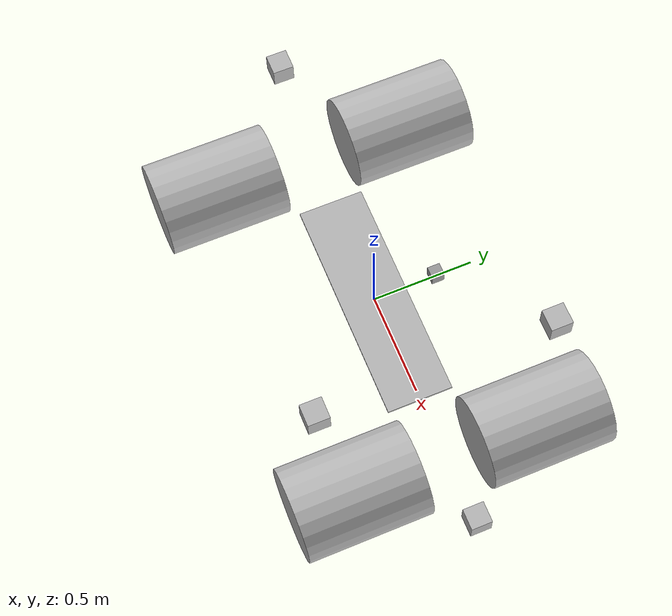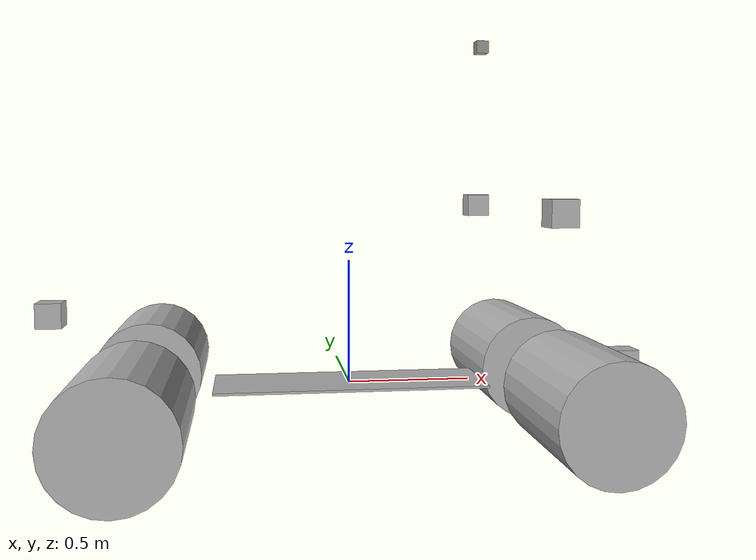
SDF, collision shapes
<?xml version='1.0'?>
<sdf version='1.7'>
  <model name='golfinho_cartographer'>

  <link name='base_footprint'/>

   <link name='imu_link'>
      <sensor name='imu_' type='imu'>
        <always_on>1</always_on>
            <update_rate>100</update_rate>
        <visualize>1</visualize>

        <plugin name='robot_imu' filename='libgazebo_ros_imu_sensor.so'>
          <initial_orientation_as_reference>0</initial_orientation_as_reference>
          <frame_name>imu_link</frame_name>
          <ros>

          <namespace>/imu</namespace>
          <remapping>~/out:=data</remapping>
          </ros>
        </plugin>
        <pose>0 0 0.01 0 0 0</pose>
      </sensor>
   </link>

      <joint name='imu_joint' type='fixed'>
      <parent>base_link</parent>
      <child>imu_link</child>
      <pose>0 0 0.05 0 0 0</pose>
      <physics>
        <ode>
          <limit>
            <cfm>0</cfm>
            <erp>0.2</erp>
          </limit>
          <suspension>
            <cfm>0</cfm>
            <erp>0.2</erp>
          </suspension>
        </ode>
      </physics>
    </joint>

   <joint name='base_joint' type='fixed'>
      <parent>base_footprint</parent>
      <child>base_link</child>
      <pose>0 0 0.05 0 0 0</pose>
      <physics>
        <ode>
          <limit>
            <cfm>0</cfm>
            <erp>0.2</erp>
          </limit>
          <suspension>
            <cfm>0</cfm>
            <erp>0.2</erp>
          </suspension>
        </ode>
      </physics>
    </joint>

    <link name='base_link'>
      <inertial>
        <pose>0 0 0 0 0 0</pose>
        <mass>160.004</mass>
        <inertia>
          <ixx>10</ixx>
          <ixy>0</ixy>
          <ixz>0</ixz>
          <iyy>10</iyy>
          <iyz>0</iyz>
          <izz>10</izz>
        </inertia>
      </inertial>
      <velocity_decay/>
      <velocity_decay/>
      <gravity>0</gravity>
      <gravity>0</gravity>
      <velocity_decay/>
      <sensor name='block_laser_sensor' type='ray'>
        <visualize>1</visualize>
        <ray>
          <scan>
            <horizontal>
              <samples>200</samples>
              <resolution>1</resolution>
              <min_angle>-0.9</min_angle>
              <max_angle>0.9</max_angle>
            </horizontal>
            <vertical>
              <samples>4</samples>
              <resolution>1</resolution>
              <min_angle>0</min_angle>
              <max_angle>0.05</max_angle>
            </vertical>
          </scan>
          <range>
            <min>0.1</min>
            <max>20</max>
            <resolution>0.01</resolution>
          </range>
        </ray>
        <update_rate>15</update_rate>
        <plugin name='gazebo_ros_block_laser_controller' filename='libgazebo_ros_ray_sensor.so'>
          <ros>
            <argument>~/out:=points2_1</argument>
          </ros>
          <output_type>sensor_msgs/PointCloud2</output_type>
          <topicName>points2_1</topicName>
          <frameName>laser_link_4_layer_front</frameName>
          <min_intensity>100.0</min_intensity>
        </plugin>
        <pose>1.18 0 0.11 0 -0 0</pose>
      </sensor>

      <sensor name='block_laser_sensor_rear' type='ray'>
        <visualize>1</visualize>
        <ray>
          <scan>
            <horizontal>
              <samples>200</samples>
              <resolution>1</resolution>
              <min_angle>-0.9</min_angle>
              <max_angle>0.9</max_angle>
            </horizontal>
            <vertical>
              <samples>4</samples>
              <resolution>1</resolution>
              <min_angle>0</min_angle>
              <max_angle>0.05</max_angle>
            </vertical>
          </scan>
          <range>
            <min>0.1</min>
            <max>20</max>
            <resolution>0.01</resolution>
          </range>
        </ray>
        <update_rate>15</update_rate>
        <plugin name='gazebo_ros_block_laser_controller' filename='libgazebo_ros_ray_sensor.so'>
          <ros>
            <argument>~/out:=points2_2</argument>
          </ros>
          <output_type>sensor_msgs/PointCloud2</output_type>
          <topicName>points2_2</topicName>
          <frameName>laser_link_4_layer_rear</frameName>
          <min_intensity>100.0</min_intensity>
        </plugin>
        <pose>-1.18 0 0.35 0 -0 3.14</pose>
      </sensor>

      <sensor name='one_block_laser_sensor' type='ray'>
        <visualize>1</visualize>
        <ray>
          <scan>
            <horizontal>
              <samples>200</samples>
              <resolution>1</resolution>
              <min_angle>-1.57075</min_angle>
              <max_angle>3.1415</max_angle>
            </horizontal>
            <vertical>
              <samples>1</samples>
              <min_angle>0</min_angle>
              <max_angle>0</max_angle>
            </vertical>
          </scan>
          <range>
            <min>0.1</min>
            <max>20</max>
            <resolution>0.01</resolution>
          </range>
        </ray>
        <update_rate>50</update_rate>
        <plugin name='gazebo_ros_block_laser_controller' filename='libgazebo_ros_ray_sensor.so'>
          <ros>
            <argument>~/out:=scan</argument>
          </ros>
          <output_type>sensor_msgs/LaserScan</output_type>
          <topicName>scan</topicName>
          <frameName>laser_link_left</frameName>
        </plugin>
        <pose>0.68 0.55 0.82 0 -0 0</pose>
      </sensor>

      <sensor name='two_block_laser_sensor' type='ray'>
        <visualize>1</visualize>
        <ray>
          <scan>
            <horizontal>
              <samples>200</samples>
              <resolution>1</resolution>
              <min_angle>-3.1415</min_angle>
              <max_angle>1.57075</max_angle>
            </horizontal>
            <vertical>
              <samples>1</samples>
              <min_angle>0</min_angle>
              <max_angle>0</max_angle>
            </vertical>
          </scan>
          <range>
            <min>0.1</min>
            <max>20</max>
            <resolution>0.01</resolution>
          </range>
        </ray>
        <update_rate>50</update_rate>
        <plugin name='gazebo_ros_block_laser_controller' filename='libgazebo_ros_ray_sensor.so'>
          <ros>
            <argument>~/out:=scan_2</argument>
          </ros>
          <output_type>sensor_msgs/LaserScan</output_type>
          <topicName>scan_2</topicName>
          <frameName>laser_link_right</frameName>
        </plugin>
        <pose>0.68 -0.55 0.82 0 -0 0</pose>
      </sensor>

      <self_collide>0</self_collide>
      <enable_wind>0</enable_wind>
      <kinematic>0</kinematic>
      <pose>0 0 0 0 -0 0</pose>

      <sensor name='bmb_gps' type='gps'>
        <always_on>1</always_on>
        <update_rate>10</update_rate>
        <gps>
          <position_sensing>
            <horizontal>
              <noise type='gaussian'>
                <mean>0</mean>
                <stddev>0.01</stddev>
              </noise>
            </horizontal>
            <vertical>
              <noise type='gaussian'>
                <mean>0</mean>
                <stddev>1</stddev>
              </noise>
            </vertical>
          </position_sensing>
        </gps>
        <plugin name='fix' filename='libgazebo_ros_gps_sensor.so'>
        <ros>
          <remapping>~/out:=gps/fix</remapping>
        </ros>
         <frame_name>gps_link</frame_name>
        </plugin>
      </sensor>

    <sensor type="camera" name="camera1">
      <update_rate>30.0</update_rate>
      <camera name="head">
        <horizontal_fov>1.3962634</horizontal_fov>
        <image>
          <width>800</width>
          <height>800</height>
          <format>R8G8B8</format>
        </image>
        <clip>
          <near>0.02</near>
          <far>300</far>
        </clip>
        <noise>
          <type>gaussian</type>
          <!-- Noise is sampled independently per pixel on each frame.
               That pixel's noise value is added to each of its color
               channels, which at that point lie in the range [0,1]. -->
          <mean>0.0</mean>
          <stddev>0.007</stddev>
        </noise>
      </camera>
      <plugin name="camera_controller" filename="libgazebo_ros_camera.so">
        <alwaysOn>true</alwaysOn>
        <updateRate>0.0</updateRate>
        <cameraName>golfinho/camera</cameraName>
        <imageTopicName>image_raw</imageTopicName>
        <cameraInfoTopicName>camera_info</cameraInfoTopicName>
        <frameName>camera_link</frameName>
        <hackBaseline>0.07</hackBaseline>
        <distortionK1>0.0</distortionK1>
        <distortionK2>0.0</distortionK2>
        <distortionK3>0.0</distortionK3>
        <distortionT1>0.0</distortionT1>
        <distortionT2>0.0</distortionT2>
      </plugin>
            <pose>0.549294 0.023722 1.36833 0 -0 0</pose>
    </sensor>

      <visual name='base_link_fixed_joint_lump__visual_0_visual'>
        <pose>0.1 0 -0.2 0 -0 0</pose>
        <geometry>
          <mesh>
            <scale>1.105 1 1</scale>
            <uri>file:////home/robsic/golfinho/install/golfinho_model/share/golfinho_model/meshes/golfinho/base.dae</uri>
          </mesh>
        </geometry>
        <material>
          <shader type='pixel'/>
          <emissive>0 0 0 1</emissive>
        </material>
        <transparency>0</transparency>
        <cast_shadows>1</cast_shadows>
      </visual>

      <collision name='base_link_fixed_joint_lump__collision_collision'>
        <laser_retro>0</laser_retro>
        <max_contacts>10</max_contacts>
        <pose>0 0 0 0 -0 0</pose>
        <geometry>
          <box>
            <size>1.1 0.32 0.01</size>
          </box>
        </geometry>
        <surface>
          <friction>
            <ode>
              <mu>1</mu>
              <mu2>1</mu2>
              <fdir1>0 0 0</fdir1>
              <slip1>0</slip1>
              <slip2>0</slip2>
            </ode>
            <torsional>
              <coefficient>1</coefficient>
              <patch_radius>0</patch_radius>
              <surface_radius>0</surface_radius>
              <use_patch_radius>1</use_patch_radius>
              <ode>
                <slip>0</slip>
              </ode>
            </torsional>
          </friction>
          <bounce>
            <restitution_coefficient>0</restitution_coefficient>
            <threshold>1e+06</threshold>
          </bounce>
          <contact>
            <collide_without_contact>0</collide_without_contact>
            <collide_without_contact_bitmask>1</collide_without_contact_bitmask>
            <collide_bitmask>1</collide_bitmask>
            <ode>
              <soft_cfm>0</soft_cfm>
              <soft_erp>0.2</soft_erp>
              <kp>1e+13</kp>
              <kd>1</kd>
              <max_vel>10</max_vel>
              <min_depth>0</min_depth>
            </ode>
            <bullet>
              <split_impulse>1</split_impulse>
              <split_impulse_penetration_threshold>-0.01</split_impulse_penetration_threshold>
              <soft_cfm>0</soft_cfm>
              <soft_erp>0.2</soft_erp>
              <kp>1e+13</kp>
              <kd>1</kd>
            </bullet>
          </contact>
        </surface>
      </collision>
    </link>

    <link name='back_left_wheel'>
      <pose>-0.835 0.485 -0 -1.5708 0 0</pose>
      <inertial>
        <pose>0 0 0 0 -0 0</pose>
        <mass>32.6</mass>
        <inertia>
          <ixx>0.412618</ixx>
          <ixy>0</ixy>
          <ixz>0</ixz>
          <iyy>0.412618</iyy>
          <iyz>0</iyz>
          <izz>0.825188</izz>
        </inertia>
      </inertial>
      <self_collide>0</self_collide>
      <enable_wind>0</enable_wind>
      <kinematic>0</kinematic>
      <visual name='back_left_wheel_visual_0_visual'>
        <pose>0 0 0 -1.5708 -0 0</pose>
        <geometry>
          <mesh>
            <scale>1 1 1</scale>
            <uri>file:////home/robsic/golfinho/install/golfinho_model/share/golfinho_model/meshes/golfinho/wheel.dae</uri>
          </mesh>
        </geometry>
        <material>
          <shader type='pixel'/>
          <emissive>0 0 0 1</emissive>
        </material>
        <transparency>0</transparency>
        <cast_shadows>1</cast_shadows>
      </visual>
      <collision name='back_left_wheel_collision_collision'>
        <laser_retro>0</laser_retro>
        <max_contacts>10</max_contacts>
        <pose>0 0 0 0 -0 0</pose>
        <geometry>
          <cylinder>
            <radius>0.225</radius>
            <length>0.6</length>
          </cylinder>
        </geometry>
        <surface>
          <friction>
            <ode>
              <mu>1</mu>
              <mu2>1</mu2>
              <fdir1>0 0 0</fdir1>
              <slip1>0</slip1>
              <slip2>0</slip2>
            </ode>
            <torsional>
              <coefficient>1</coefficient>
              <patch_radius>0</patch_radius>
              <surface_radius>0</surface_radius>
              <use_patch_radius>1</use_patch_radius>
              <ode>
                <slip>0</slip>
              </ode>
            </torsional>
          </friction>
          <bounce>
            <restitution_coefficient>0</restitution_coefficient>
            <threshold>1e+06</threshold>
          </bounce>
          <contact>
            <collide_without_contact>0</collide_without_contact>
            <collide_without_contact_bitmask>1</collide_without_contact_bitmask>
            <collide_bitmask>1</collide_bitmask>
            <ode>
              <soft_cfm>0</soft_cfm>
              <soft_erp>0.2</soft_erp>
              <kp>1e+13</kp>
              <kd>1</kd>
              <max_vel>10</max_vel>
              <min_depth>0</min_depth>
            </ode>
            <bullet>
              <split_impulse>1</split_impulse>
              <split_impulse_penetration_threshold>-0.01</split_impulse_penetration_threshold>
              <soft_cfm>0</soft_cfm>
              <soft_erp>0.2</soft_erp>
              <kp>1e+13</kp>
              <kd>1</kd>
            </bullet>
          </contact>
        </surface>
      </collision>
    </link>
    <link name='back_right_wheel'>
      <pose>-0.835 -0.485 -0 -1.5708 0 0</pose>
      <inertial>
        <pose>0 0 0 0 -0 0</pose>
        <mass>32.6</mass>
        <inertia>
          <ixx>0.412618</ixx>
          <ixy>0</ixy>
          <ixz>0</ixz>
          <iyy>0.412618</iyy>
          <iyz>0</iyz>
          <izz>0.825188</izz>
        </inertia>
      </inertial>
      <self_collide>0</self_collide>
      <enable_wind>0</enable_wind>
      <kinematic>0</kinematic>
      <visual name='back_right_wheel_fixed_joint_lump__back_left_wheel_visual_0_visual'>
        <pose>0 0 0 1.5708 -0 0</pose>
        <geometry>
          <mesh>
            <scale>1 1 1</scale>
            <uri>file:////home/robsic/golfinho/install/golfinho_model/share/golfinho_model/meshes/golfinho/wheel.dae</uri>
          </mesh>
        </geometry>
        <material>
          <shader type='pixel'/>
          <emissive>0 0 0 1</emissive>
        </material>
        <transparency>0</transparency>
        <cast_shadows>1</cast_shadows>
      </visual>
      <collision name='back_right_wheel_collision_collision'>
        <laser_retro>0</laser_retro>
        <max_contacts>10</max_contacts>
        <pose>0 0 0 0 -0 0</pose>
        <geometry>
          <cylinder>
            <radius>0.225</radius>
            <length>0.6</length>
          </cylinder>
        </geometry>
        <surface>
          <friction>
            <ode>
              <mu>1</mu>
              <mu2>1</mu2>
              <fdir1>0 0 0</fdir1>
              <slip1>0</slip1>
              <slip2>0</slip2>
            </ode>
            <torsional>
              <coefficient>1</coefficient>
              <patch_radius>0</patch_radius>
              <surface_radius>0</surface_radius>
              <use_patch_radius>1</use_patch_radius>
              <ode>
                <slip>0</slip>
              </ode>
            </torsional>
          </friction>
          <bounce>
            <restitution_coefficient>0</restitution_coefficient>
            <threshold>1e+06</threshold>
          </bounce>
          <contact>
            <collide_without_contact>0</collide_without_contact>
            <collide_without_contact_bitmask>1</collide_without_contact_bitmask>
            <collide_bitmask>1</collide_bitmask>
            <ode>
              <soft_cfm>0</soft_cfm>
              <soft_erp>0.2</soft_erp>
              <kp>1e+13</kp>
              <kd>1</kd>
              <max_vel>10</max_vel>
              <min_depth>0</min_depth>
            </ode>
            <bullet>
              <split_impulse>1</split_impulse>
              <split_impulse_penetration_threshold>-0.01</split_impulse_penetration_threshold>
              <soft_cfm>0</soft_cfm>
              <soft_erp>0.2</soft_erp>
              <kp>1e+13</kp>
              <kd>1</kd>
            </bullet>
          </contact>
        </surface>
      </collision>
    </link>
    <link name='front_left_mount'>
      <pose>0.835 0.45 -0 -1.5708 0 0</pose>
      <inertial>
        <pose>0 0 0 0 -0 0</pose>
        <mass>0.00064182</mass>
        <inertia>
          <ixx>2.11e-06</ixx>
          <ixy>0</ixy>
          <ixz>0</ixz>
          <iyy>2.11e-06</iyy>
          <iyz>0</iyz>
          <izz>2.7e-07</izz>
        </inertia>
      </inertial>
      <self_collide>0</self_collide>
      <enable_wind>0</enable_wind>
      <kinematic>0</kinematic>
      <visual name='front_left_mount_visual_visual'>
        <pose>0 0 0 1.5708 -0 0</pose>
        <geometry>
          <cylinder>
            <length>0.0001</length>
            <radius>0.0001</radius>
          </cylinder>
        </geometry>
        <material>
          <shader type='pixel'/>
          <emissive>0 0 0 1</emissive>
        </material>
        <transparency>0</transparency>
        <cast_shadows>1</cast_shadows>
      </visual>
      <collision name='front_left_mount_collision_collision'>
        <laser_retro>0</laser_retro>
        <max_contacts>10</max_contacts>
        <pose>0 0 0 0 -0 0</pose>
        <geometry>
          <cylinder>
            <radius>0.115</radius>
            <length>0.072407</length>
          </cylinder>
        </geometry>
        <surface>
          <friction>
            <ode>
              <mu>1</mu>
              <mu2>1</mu2>
              <fdir1>0 0 0</fdir1>
              <slip1>0</slip1>
              <slip2>0</slip2>
            </ode>
            <torsional>
              <coefficient>1</coefficient>
              <patch_radius>0</patch_radius>
              <surface_radius>0</surface_radius>
              <use_patch_radius>1</use_patch_radius>
              <ode>
                <slip>0</slip>
              </ode>
            </torsional>
          </friction>
          <bounce>
            <restitution_coefficient>0</restitution_coefficient>
            <threshold>1e+06</threshold>
          </bounce>
          <contact>
            <collide_without_contact>0</collide_without_contact>
            <collide_without_contact_bitmask>1</collide_without_contact_bitmask>
            <collide_bitmask>1</collide_bitmask>
            <ode>
              <soft_cfm>0</soft_cfm>
              <soft_erp>0.2</soft_erp>
              <kp>1e+13</kp>
              <kd>1</kd>
              <max_vel>10</max_vel>
              <min_depth>0</min_depth>
            </ode>
            <bullet>
              <split_impulse>1</split_impulse>
              <split_impulse_penetration_threshold>-0.01</split_impulse_penetration_threshold>
              <soft_cfm>0</soft_cfm>
              <soft_erp>0.2</soft_erp>
              <kp>1e+13</kp>
              <kd>1</kd>
            </bullet>
          </contact>
        </surface>
      </collision>
    </link>
    <link name='front_left_wheel'>
      <pose>0.835 0.45 -0 -1.5708 0 0</pose>
      <inertial>
        <pose>0 0 0 0 -0 0</pose>
        <mass>32.6</mass>
        <inertia>
          <ixx>0.412618</ixx>
          <ixy>0</ixy>
          <ixz>0</ixz>
          <iyy>0.412618</iyy>
          <iyz>0</iyz>
          <izz>0.825188</izz>
        </inertia>
      </inertial>
      <self_collide>0</self_collide>
      <enable_wind>0</enable_wind>
      <kinematic>0</kinematic>
      <visual name='front_left_wheel_visual_0_visual'>
        <pose>0 0 0 -1.5708 0 0</pose>
        <geometry>
          <mesh>
            <scale>1 1 1</scale>
            <uri>file:////home/robsic/golfinho/install/golfinho_model/share/golfinho_model/meshes/golfinho/wheel.dae</uri>
          </mesh>
        </geometry>
        <material>
          <shader type='pixel'/>
          <emissive>0 0 0 1</emissive>
        </material>
        <transparency>0</transparency>
        <cast_shadows>1</cast_shadows>
      </visual>
      <collision name='front_left_wheel_collision_collision'>
        <laser_retro>0</laser_retro>
        <max_contacts>10</max_contacts>
        <pose>0 0 0 0 -0 0</pose>
        <geometry>
          <cylinder>
            <radius>0.225</radius>
            <length>0.6</length>
          </cylinder>
        </geometry>
        <surface>
          <friction>
            <ode>
              <mu>1</mu>
              <mu2>1</mu2>
              <fdir1>0 0 0</fdir1>
              <slip1>0</slip1>
              <slip2>0</slip2>
            </ode>
            <torsional>
              <coefficient>1</coefficient>
              <patch_radius>0</patch_radius>
              <surface_radius>0</surface_radius>
              <use_patch_radius>1</use_patch_radius>
              <ode>
                <slip>0</slip>
              </ode>
            </torsional>
          </friction>
          <bounce>
            <restitution_coefficient>0</restitution_coefficient>
            <threshold>1e+06</threshold>
          </bounce>
          <contact>
            <collide_without_contact>0</collide_without_contact>
            <collide_without_contact_bitmask>1</collide_without_contact_bitmask>
            <collide_bitmask>1</collide_bitmask>
            <ode>
              <soft_cfm>0</soft_cfm>
              <soft_erp>0.2</soft_erp>
              <kp>1e+13</kp>
              <kd>1</kd>
              <max_vel>10</max_vel>
              <min_depth>0</min_depth>
            </ode>
            <bullet>
              <split_impulse>1</split_impulse>
              <split_impulse_penetration_threshold>-0.01</split_impulse_penetration_threshold>
              <soft_cfm>0</soft_cfm>
              <soft_erp>0.2</soft_erp>
              <kp>1e+13</kp>
              <kd>1</kd>
            </bullet>
          </contact>
        </surface>
      </collision>
    </link>
    <link name='front_right_mount'>
      <pose>0.835 -0.45 -0 -1.5708 0 0</pose>
      <inertial>
        <pose>0 0 0 0 -0 0</pose>
        <mass>0.00064182</mass>
        <inertia>
          <ixx>2.11e-06</ixx>
          <ixy>0</ixy>
          <ixz>0</ixz>
          <iyy>2.11e-06</iyy>
          <iyz>0</iyz>
          <izz>2.7e-07</izz>
        </inertia>
      </inertial>
      <self_collide>0</self_collide>
      <enable_wind>0</enable_wind>
      <kinematic>0</kinematic>
      <visual name='front_right_mount_visual_visual'>
        <pose>0 0 0 1.5708 -0 0</pose>
        <geometry>
          <cylinder>
            <length>0.0001</length>
            <radius>0.0001</radius>
          </cylinder>
        </geometry>
        <material>
          <shader type='pixel'/>
          <emissive>0 0 0 1</emissive>
        </material>
        <transparency>0</transparency>
        <cast_shadows>1</cast_shadows>
      </visual>
      <collision name='front_right_mount_collision_collision'>
        <laser_retro>0</laser_retro>
        <max_contacts>10</max_contacts>
        <pose>0 0 0 0 -0 0</pose>
        <geometry>
          <cylinder>
            <radius>0.115</radius>
            <length>0.072407</length>
          </cylinder>
        </geometry>
        <surface>
          <friction>
            <ode>
              <mu>1</mu>
              <mu2>1</mu2>
              <fdir1>0 0 0</fdir1>
              <slip1>0</slip1>
              <slip2>0</slip2>
            </ode>
            <torsional>
              <coefficient>1</coefficient>
              <patch_radius>0</patch_radius>
              <surface_radius>0</surface_radius>
              <use_patch_radius>1</use_patch_radius>
              <ode>
                <slip>0</slip>
              </ode>
            </torsional>
          </friction>
          <bounce>
            <restitution_coefficient>0</restitution_coefficient>
            <threshold>1e+06</threshold>
          </bounce>
          <contact>
            <collide_without_contact>0</collide_without_contact>
            <collide_without_contact_bitmask>1</collide_without_contact_bitmask>
            <collide_bitmask>1</collide_bitmask>
            <ode>
              <soft_cfm>0</soft_cfm>
              <soft_erp>0.2</soft_erp>
              <kp>1e+13</kp>
              <kd>1</kd>
              <max_vel>10</max_vel>
              <min_depth>0</min_depth>
            </ode>
            <bullet>
              <split_impulse>1</split_impulse>
              <split_impulse_penetration_threshold>-0.01</split_impulse_penetration_threshold>
              <soft_cfm>0</soft_cfm>
              <soft_erp>0.2</soft_erp>
              <kp>1e+13</kp>
              <kd>1</kd>
            </bullet>
          </contact>
        </surface>
      </collision>
    </link>
    <link name='front_right_wheel'>
      <pose>0.835 -0.45 -0 -1.5708 0 0</pose>
      <inertial>
        <pose>0 0 0 0 -0 0</pose>
        <mass>32.6</mass>
        <inertia>
          <ixx>0.412618</ixx>
          <ixy>0</ixy>
          <ixz>0</ixz>
          <iyy>0.412618</iyy>
          <iyz>0</iyz>
          <izz>0.825188</izz>
        </inertia>
      </inertial>
      <self_collide>0</self_collide>
      <enable_wind>0</enable_wind>
      <kinematic>0</kinematic>
      <visual name='front_right_wheel_visual_0_visual'>
        <pose>0 0 0 1.5708 -0 0</pose>
        <geometry>
          <mesh>
            <scale>1 1 1</scale>
            <uri>file:////home/robsic/golfinho/install/golfinho_model/share/golfinho_model/meshes/golfinho/wheel.dae</uri>
          </mesh>
        </geometry>
        <material>
          <shader type='pixel'/>
          <emissive>0 0 0 1</emissive>
        </material>
        <transparency>0</transparency>
        <cast_shadows>1</cast_shadows>
      </visual>
      <collision name='front_right_wheel_collision_collision'>
        <laser_retro>0</laser_retro>
        <max_contacts>10</max_contacts>
        <pose>0 0 0 0 -0 0</pose>
        <geometry>
          <cylinder>
            <radius>0.225</radius>
            <length>0.6</length>
          </cylinder>
        </geometry>
        <surface>
          <friction>
            <ode>
              <mu>1</mu>
              <mu2>1</mu2>
              <fdir1>0 0 0</fdir1>
              <slip1>0</slip1>
              <slip2>0</slip2>
            </ode>
            <torsional>
              <coefficient>1</coefficient>
              <patch_radius>0</patch_radius>
              <surface_radius>0</surface_radius>
              <use_patch_radius>1</use_patch_radius>
              <ode>
                <slip>0</slip>
              </ode>
            </torsional>
          </friction>
          <bounce>
            <restitution_coefficient>0</restitution_coefficient>
            <threshold>1e+06</threshold>
          </bounce>
          <contact>
            <collide_without_contact>0</collide_without_contact>
            <collide_without_contact_bitmask>1</collide_without_contact_bitmask>
            <collide_bitmask>1</collide_bitmask>
            <ode>
              <soft_cfm>0</soft_cfm>
              <soft_erp>0.2</soft_erp>
              <kp>1e+13</kp>
              <kd>1</kd>
              <max_vel>10</max_vel>
              <min_depth>0</min_depth>
            </ode>
            <bullet>
              <split_impulse>1</split_impulse>
              <split_impulse_penetration_threshold>-0.01</split_impulse_penetration_threshold>
              <soft_cfm>0</soft_cfm>
              <soft_erp>0.2</soft_erp>
              <kp>1e+13</kp>
              <kd>1</kd>
            </bullet>
          </contact>
        </surface>
      </collision>
    </link>
    <link name='link_0'>
      <inertial>
        <mass>1</mass>
        <inertia>
          <ixx>0.166667</ixx>
          <ixy>0</ixy>
          <ixz>0</ixz>
          <iyy>0.166667</iyy>
          <iyz>0</iyz>
          <izz>0.166667</izz>
        </inertia>
        <pose>0 0 0 0 -0 0</pose>
      </inertial>
      <pose>1.18 0 0.06 0 -0 0</pose>
      <gravity>0</gravity>
      <self_collide>0</self_collide>
      <kinematic>0</kinematic>
      <enable_wind>0</enable_wind>
      <visual name='visual'>
        <pose>0 0 0 0 -0 0</pose>
        <geometry>
          <mesh>
            <scale>0.05 0.05 0.05</scale>
            <uri>file:////home/robsic/golfinho/install/golfinho_model/share/golfinho_model/meshes/sick_4camadas.dae</uri>
          </mesh>
        </geometry>
        <material>
          <shader type='pixel'/>
          <emissive>0 0 0 1</emissive>
        </material>
        <transparency>0</transparency>
        <cast_shadows>1</cast_shadows>
      </visual>
      <collision name='collision'>
        <laser_retro>0</laser_retro>
        <max_contacts>10</max_contacts>
        <pose>0 0 0 0 -0 0</pose>
        <geometry>
          <box>
            <size>0.1 0.1 0.1</size>
          </box>
        </geometry>
        <surface>
          <friction>
            <ode>
              <mu>1</mu>
              <mu2>1</mu2>
              <fdir1>0 0 0</fdir1>
              <slip1>0</slip1>
              <slip2>0</slip2>
            </ode>
            <torsional>
              <coefficient>1</coefficient>
              <patch_radius>0</patch_radius>
              <surface_radius>0</surface_radius>
              <use_patch_radius>1</use_patch_radius>
              <ode>
                <slip>0</slip>
              </ode>
            </torsional>
          </friction>
          <bounce>
            <restitution_coefficient>0</restitution_coefficient>
            <threshold>1e+06</threshold>
          </bounce>
          <contact>
            <collide_without_contact>0</collide_without_contact>
            <collide_without_contact_bitmask>1</collide_without_contact_bitmask>
            <collide_bitmask>1</collide_bitmask>
            <ode>
              <soft_cfm>0</soft_cfm>
              <soft_erp>0.2</soft_erp>
              <kp>1e+13</kp>
              <kd>1</kd>
              <max_vel>0.01</max_vel>
              <min_depth>0</min_depth>
            </ode>
            <bullet>
              <split_impulse>1</split_impulse>
              <split_impulse_penetration_threshold>-0.01</split_impulse_penetration_threshold>
              <soft_cfm>0</soft_cfm>
              <soft_erp>0.2</soft_erp>
              <kp>1e+13</kp>
              <kd>1</kd>
            </bullet>
          </contact>
        </surface>
      </collision>
    </link>
    <link name='link_0_0'>
      <inertial>
        <mass>1</mass>
        <inertia>
          <ixx>0.166667</ixx>
          <ixy>0</ixy>
          <ixz>0</ixz>
          <iyy>0.166667</iyy>
          <iyz>0</iyz>
          <izz>0.166667</izz>
        </inertia>
        <pose>0.68 0.55 0.71 0 -0 0</pose>
      </inertial>
      <pose>0.68 0.55 0.71 0 -0 0</pose>
      <gravity>0</gravity>
      <self_collide>0</self_collide>
      <kinematic>0</kinematic>
      <enable_wind>0</enable_wind>
      <visual name='visual'>
        <pose>0 0 0 0 -0 0.7854</pose>
        <geometry>
          <mesh>
            <scale>0.0005 0.0005 0.0005</scale>
            <uri>file:////home/robsic/golfinho/install/golfinho_model/share/golfinho_model/meshes/sick_270.dae</uri>
          </mesh>
        </geometry>
        <material>
          <shader type='pixel'/>
          <emissive>0 0 0 1</emissive>
        </material>
        <transparency>0</transparency>
        <cast_shadows>1</cast_shadows>
      </visual>
      <collision name='collision'>
        <laser_retro>0</laser_retro>
        <max_contacts>10</max_contacts>
        <pose>0 0 0 0 -0 0</pose>
        <geometry>
          <box>
            <size>0.1 0.1 0.1</size>
          </box>
        </geometry>
        <surface>
          <friction>
            <ode>
              <mu>1</mu>
              <mu2>1</mu2>
              <fdir1>0 0 0</fdir1>
              <slip1>0</slip1>
              <slip2>0</slip2>
            </ode>
            <torsional>
              <coefficient>1</coefficient>
              <patch_radius>0</patch_radius>
              <surface_radius>0</surface_radius>
              <use_patch_radius>1</use_patch_radius>
              <ode>
                <slip>0</slip>
              </ode>
            </torsional>
          </friction>
          <bounce>
            <restitution_coefficient>0</restitution_coefficient>
            <threshold>1e+06</threshold>
          </bounce>
          <contact>
            <collide_without_contact>0</collide_without_contact>
            <collide_without_contact_bitmask>1</collide_without_contact_bitmask>
            <collide_bitmask>1</collide_bitmask>
            <ode>
              <soft_cfm>0</soft_cfm>
              <soft_erp>0.2</soft_erp>
              <kp>1e+13</kp>
              <kd>1</kd>
              <max_vel>0.01</max_vel>
              <min_depth>0</min_depth>
            </ode>
            <bullet>
              <split_impulse>1</split_impulse>
              <split_impulse_penetration_threshold>-0.01</split_impulse_penetration_threshold>
              <soft_cfm>0</soft_cfm>
              <soft_erp>0.2</soft_erp>
              <kp>1e+13</kp>
              <kd>1</kd>
            </bullet>
          </contact>
        </surface>
      </collision>
    </link>
    <link name='link_0_0_clone'>
      <inertial>
        <mass>1</mass>
        <inertia>
          <ixx>0.166667</ixx>
          <ixy>0</ixy>
          <ixz>0</ixz>
          <iyy>0.166667</iyy>
          <iyz>0</iyz>
          <izz>0.166667</izz>
        </inertia>
        <pose>0.68 -0.55 0.71 0 -0 0</pose>
      </inertial>
      <pose>0.68 -0.55 0.71 0 -0 0</pose>
      <gravity>0</gravity>
      <self_collide>0</self_collide>
      <kinematic>0</kinematic>
      <enable_wind>0</enable_wind>
      <visual name='visual_0'>
        <pose>0 0 0 0 0 -0.7854</pose>
        <geometry>
          <mesh>
            <scale>0.0005 0.0005 0.0005</scale>
            <uri>/home/robsic/golfinho/install/golfinho_model/share/golfinho_model/meshes/sick_270.dae</uri>
          </mesh>
        </geometry>
        <material>
          <shader type='pixel'/>
          <emissive>0 0 0 1</emissive>
        </material>
        <transparency>0</transparency>
        <cast_shadows>1</cast_shadows>
      </visual>
      <collision name='collision'>
        <laser_retro>0</laser_retro>
        <max_contacts>10</max_contacts>
        <pose>0 0 0 0 -0 0</pose>
        <geometry>
          <box>
            <size>0.1 0.1 0.1</size>
          </box>
        </geometry>
        <surface>
          <friction>
            <ode>
              <mu>1</mu>
              <mu2>1</mu2>
              <fdir1>0 0 0</fdir1>
              <slip1>0</slip1>
              <slip2>0</slip2>
            </ode>
            <torsional>
              <coefficient>1</coefficient>
              <patch_radius>0</patch_radius>
              <surface_radius>0</surface_radius>
              <use_patch_radius>1</use_patch_radius>
              <ode>
                <slip>0</slip>
              </ode>
            </torsional>
          </friction>
          <bounce>
            <restitution_coefficient>0</restitution_coefficient>
            <threshold>1e+06</threshold>
          </bounce>
          <contact>
            <collide_without_contact>0</collide_without_contact>
            <collide_without_contact_bitmask>1</collide_without_contact_bitmask>
            <collide_bitmask>1</collide_bitmask>
            <ode>
              <soft_cfm>0</soft_cfm>
              <soft_erp>0.2</soft_erp>
              <kp>1e+13</kp>
              <kd>1</kd>
              <max_vel>0.01</max_vel>
              <min_depth>0</min_depth>
            </ode>
            <bullet>
              <split_impulse>1</split_impulse>
              <split_impulse_penetration_threshold>-0.01</split_impulse_penetration_threshold>
              <soft_cfm>0</soft_cfm>
              <soft_erp>0.2</soft_erp>
              <kp>1e+13</kp>
              <kd>1</kd>
            </bullet>
          </contact>
        </surface>
      </collision>
    </link>
    <link name='link_0_1'>
      <inertial>
        <mass>1</mass>
        <inertia>
          <ixx>0.166667</ixx>
          <ixy>0</ixy>
          <ixz>0</ixz>
          <iyy>0.166667</iyy>
          <iyz>0</iyz>
          <izz>0.166667</izz>
        </inertia>
        <pose>0 0 0 0 -0 0</pose>
      </inertial>
      <pose>0.549294 0.023722 1.36833 0 -0 0</pose>
      <gravity>0</gravity>
      <self_collide>0</self_collide>
      <kinematic>0</kinematic>
      <enable_wind>0</enable_wind>
      <visual name='visual'>
        <pose>0 0 0 0 -0 0</pose>
        <geometry>
          <box>
            <size>0.05 0.05 0.05</size>
          </box>
        </geometry>
        <material>
          <lighting>1</lighting>
          <script>
            <uri>file://media/materials/scripts/gazebo.material</uri>
            <name>Gazebo/Grey</name>
          </script>
          <shader type='pixel'>
            <normal_map>__default__</normal_map>
          </shader>
          <ambient>0.3 0.3 0.3 1</ambient>
          <diffuse>0.7 0.7 0.7 1</diffuse>
          <specular>0.01 0.01 0.01 1</specular>
          <emissive>0 0 0 1</emissive>
        </material>
        <transparency>0</transparency>
        <cast_shadows>1</cast_shadows>
      </visual>
      <collision name='collision'>
        <laser_retro>0</laser_retro>
        <max_contacts>10</max_contacts>
        <pose>0 0 0 0 -0 0</pose>
        <geometry>
          <box>
            <size>0.05 0.05 0.05</size>
          </box>
        </geometry>
        <surface>
          <friction>
            <ode>
              <mu>1</mu>
              <mu2>1</mu2>
              <fdir1>0 0 0</fdir1>
              <slip1>0</slip1>
              <slip2>0</slip2>
            </ode>
            <torsional>
              <coefficient>1</coefficient>
              <patch_radius>0</patch_radius>
              <surface_radius>0</surface_radius>
              <use_patch_radius>1</use_patch_radius>
              <ode>
                <slip>0</slip>
              </ode>
            </torsional>
          </friction>
          <bounce>
            <restitution_coefficient>0</restitution_coefficient>
            <threshold>1e+06</threshold>
          </bounce>
          <contact>
            <collide_without_contact>0</collide_without_contact>
            <collide_without_contact_bitmask>1</collide_without_contact_bitmask>
            <collide_bitmask>1</collide_bitmask>
            <ode>
              <soft_cfm>0</soft_cfm>
              <soft_erp>0.2</soft_erp>
              <kp>1e+13</kp>
              <kd>1</kd>
              <max_vel>0.01</max_vel>
              <min_depth>0</min_depth>
            </ode>
            <bullet>
              <split_impulse>1</split_impulse>
              <split_impulse_penetration_threshold>-0.01</split_impulse_penetration_threshold>
              <soft_cfm>0</soft_cfm>
              <soft_erp>0.2</soft_erp>
              <kp>1e+13</kp>
              <kd>1</kd>
            </bullet>
          </contact>
        </surface>
      </collision>
    </link>
    <link name='link_0_clone'>
      <inertial>
        <mass>1</mass>
        <inertia>
          <ixx>0.166667</ixx>
          <ixy>0</ixy>
          <ixz>0</ixz>
          <iyy>0.166667</iyy>
          <iyz>0</iyz>
          <izz>0.166667</izz>
        </inertia>
        <pose>0 0 0 0 -0 0</pose>
      </inertial>
      <pose>-1.18 0 0.3 0 -0 0</pose>
      <gravity>0</gravity>
      <self_collide>0</self_collide>
      <kinematic>0</kinematic>
      <enable_wind>0</enable_wind>
      <visual name='visual'>
        <pose>0 0 0 0 -0 3.14</pose>
        <geometry>
          <mesh>
            <scale>0.05 0.05 0.05</scale>
            <uri>file:////home/robsic/golfinho/install/golfinho_model/share/golfinho_model/meshes/sick_4camadas.dae</uri>
          </mesh>
        </geometry>
        <material>
          <shader type='pixel'/>
          <emissive>0 0 0 1</emissive>
        </material>
        <transparency>0</transparency>
        <cast_shadows>1</cast_shadows>
      </visual>
      <collision name='collision'>
        <laser_retro>0</laser_retro>
        <max_contacts>10</max_contacts>
        <pose>0 0 0 0 -0 0</pose>
        <geometry>
          <box>
            <size>0.1 0.1 0.1</size>
          </box>
        </geometry>
        <surface>
          <friction>
            <ode>
              <mu>1</mu>
              <mu2>1</mu2>
              <fdir1>0 0 0</fdir1>
              <slip1>0</slip1>
              <slip2>0</slip2>
            </ode>
            <torsional>
              <coefficient>1</coefficient>
              <patch_radius>0</patch_radius>
              <surface_radius>0</surface_radius>
              <use_patch_radius>1</use_patch_radius>
              <ode>
                <slip>0</slip>
              </ode>
            </torsional>
          </friction>
          <bounce>
            <restitution_coefficient>0</restitution_coefficient>
            <threshold>1e+06</threshold>
          </bounce>
          <contact>
            <collide_without_contact>0</collide_without_contact>
            <collide_without_contact_bitmask>1</collide_without_contact_bitmask>
            <collide_bitmask>1</collide_bitmask>
            <ode>
              <soft_cfm>0</soft_cfm>
              <soft_erp>0.2</soft_erp>
              <kp>1e+13</kp>
              <kd>1</kd>
              <max_vel>0.01</max_vel>
              <min_depth>0</min_depth>
            </ode>
            <bullet>
              <split_impulse>1</split_impulse>
              <split_impulse_penetration_threshold>-0.01</split_impulse_penetration_threshold>
              <soft_cfm>0</soft_cfm>
              <soft_erp>0.2</soft_erp>
              <kp>1e+13</kp>
              <kd>1</kd>
            </bullet>
          </contact>
        </surface>
      </collision>
    </link>
    <link name='steering'>
      <pose>0.194763 0.27693 0.818981 1e-06 -0.872602 -6.8e-05</pose>
      <inertial>
        <pose>0 0 0 0 -0 0</pose>
        <mass>0.00016233</mass>
        <inertia>
          <ixx>6e-08</ixx>
          <ixy>0</ixy>
          <ixz>0</ixz>
          <iyy>6e-08</iyy>
          <iyz>0</iyz>
          <izz>8e-08</izz>
        </inertia>
      </inertial>
      <self_collide>0</self_collide>
      <enable_wind>0</enable_wind>
      <kinematic>0</kinematic>
      <visual name='steering_fixed_joint_lump__visual_visual'>
        <pose>0 0 -0.07 1.4108 -0 0</pose>
        <geometry>
          <mesh>
            <scale>0.1 0.1 0.1</scale>
            <uri>file:////home/robsic/golfinho/install/golfinho_model/share/golfinho_model/meshes/steering.dae</uri>
          </mesh>
        </geometry>
        <material>
          <shader type='pixel'/>
          <emissive>0 0 0 1</emissive>
        </material>
        <transparency>0</transparency>
        <cast_shadows>1</cast_shadows>
      </visual>
      <collision name='steering_fixed_joint_lump__collision_collision'>
        <laser_retro>0</laser_retro>
        <max_contacts>10</max_contacts>
        <pose>-0.012 -0.01 -0.04 0 -0 0</pose>
        <geometry>
          <cylinder>
            <radius>0.0001</radius>
            <length>0.0001</length>
          </cylinder>
        </geometry>
        <surface>
          <friction>
            <ode>
              <mu>1</mu>
              <mu2>1</mu2>
              <fdir1>0 0 0</fdir1>
              <slip1>0</slip1>
              <slip2>0</slip2>
            </ode>
            <torsional>
              <coefficient>1</coefficient>
              <patch_radius>0</patch_radius>
              <surface_radius>0</surface_radius>
              <use_patch_radius>1</use_patch_radius>
              <ode>
                <slip>0</slip>
              </ode>
            </torsional>
          </friction>
          <bounce>
            <restitution_coefficient>0</restitution_coefficient>
            <threshold>1e+06</threshold>
          </bounce>
          <contact>
            <collide_without_contact>0</collide_without_contact>
            <collide_without_contact_bitmask>1</collide_without_contact_bitmask>
            <collide_bitmask>1</collide_bitmask>
            <ode>
              <soft_cfm>0</soft_cfm>
              <soft_erp>0.2</soft_erp>
              <kp>1e+13</kp>
              <kd>1</kd>
              <max_vel>0.01</max_vel>
              <min_depth>0</min_depth>
            </ode>
            <bullet>
              <split_impulse>1</split_impulse>
              <split_impulse_penetration_threshold>-0.01</split_impulse_penetration_threshold>
              <soft_cfm>0</soft_cfm>
              <soft_erp>0.2</soft_erp>
              <kp>1e+13</kp>
              <kd>1</kd>
            </bullet>
          </contact>
        </surface>
      </collision>
    </link>
    <joint name='back_left_wheel_joint' type='revolute'>
      <parent>base_link</parent>
      <child>back_left_wheel</child>
      <pose>0 -0 0 0 -0 0</pose>
      <axis>
        <xyz>0 0 1</xyz>
        <limit>
          <lower>-1e+16</lower>
          <upper>1e+16</upper>
          <effort>-1</effort>
          <velocity>-1</velocity>
        </limit>
        <dynamics>
          <spring_reference>0</spring_reference>
          <spring_stiffness>0</spring_stiffness>
          <damping>0</damping>
          <friction>0</friction>
        </dynamics>
      </axis>
      <physics>
        <ode>
          <limit>
            <cfm>0</cfm>
            <erp>0.2</erp>
          </limit>
          <suspension>
            <cfm>0</cfm>
            <erp>0.2</erp>
          </suspension>
        </ode>
      </physics>
    </joint>
    <joint name='back_right_wheel_joint' type='revolute'>
      <parent>base_link</parent>
      <child>back_right_wheel</child>
      <pose>0 0 -0 0 -0 0</pose>
      <axis>
        <xyz>0 0 1</xyz>
        <limit>
          <lower>-1e+16</lower>
          <upper>1e+16</upper>
          <effort>-1</effort>
          <velocity>-1</velocity>
        </limit>
        <dynamics>
          <spring_reference>0</spring_reference>
          <spring_stiffness>0</spring_stiffness>
          <damping>0</damping>
          <friction>0</friction>
        </dynamics>
      </axis>
      <physics>
        <ode>
          <limit>
            <cfm>0</cfm>
            <erp>0.2</erp>
          </limit>
          <suspension>
            <cfm>0</cfm>
            <erp>0.2</erp>
          </suspension>
        </ode>
      </physics>
    </joint>
    <joint name='base_link_JOINT_1' type='fixed'>
      <parent>base_link</parent>
      <child>link_0_0</child>
      <pose>0 0 0 0 -0 0</pose>
      <physics>
        <ode>
          <limit>
            <cfm>0</cfm>
            <erp>0.2</erp>
          </limit>
          <suspension>
            <cfm>0</cfm>
            <erp>0.2</erp>
          </suspension>
        </ode>
      </physics>
    </joint>
    <joint name='front_left_mount_joint' type='revolute'>
      <parent>base_link</parent>
      <child>front_left_mount</child>
      <pose>0 -0 0 0 -0 0</pose>
      <axis>
        <xyz>0 -1 0</xyz>
        <limit>
          <lower>-1e+16</lower>
          <upper>1e+16</upper>
          <effort>-1</effort>
          <velocity>-1</velocity>
        </limit>
        <dynamics>
          <spring_reference>0</spring_reference>
          <spring_stiffness>0</spring_stiffness>
          <damping>0</damping>
          <friction>0</friction>
        </dynamics>
      </axis>
      <physics>
        <ode>
          <limit>
            <cfm>0</cfm>
            <erp>1</erp>
          </limit>
          <suspension>
            <cfm>0</cfm>
            <erp>1</erp>
          </suspension>
        </ode>
      </physics>
    </joint>
    <joint name='front_left_wheel_joint' type='revolute'>
      <parent>front_left_mount</parent>
      <child>front_left_wheel</child>
      <pose>0 -0 0 0 -0 0</pose>
      <axis>
        <xyz>0 0 1</xyz>
        <limit>
          <lower>-1e+16</lower>
          <upper>1e+16</upper>
          <effort>-1</effort>
          <velocity>-1</velocity>
        </limit>
        <dynamics>
          <spring_reference>0</spring_reference>
          <spring_stiffness>0</spring_stiffness>
          <damping>0</damping>
          <friction>0</friction>
        </dynamics>
      </axis>
      <physics>
        <ode>
          <limit>
            <cfm>0</cfm>
            <erp>1</erp>
          </limit>
          <suspension>
            <cfm>0</cfm>
            <erp>1</erp>
          </suspension>
        </ode>
      </physics>
    </joint>
    <joint name='front_right_mount_joint' type='revolute'>
      <parent>base_link</parent>
      <child>front_right_mount</child>
      <pose>0 0 -0 0 -0 0</pose>
      <axis>
        <xyz>0 -1 0</xyz>
        <limit>
          <lower>-1e+16</lower>
          <upper>1e+16</upper>
          <effort>-1</effort>
          <velocity>-1</velocity>
        </limit>
        <dynamics>
          <spring_reference>0</spring_reference>
          <spring_stiffness>0</spring_stiffness>
          <damping>0</damping>
          <friction>0</friction>
        </dynamics>
      </axis>
      <physics>
        <ode>
          <limit>
            <cfm>0</cfm>
            <erp>1</erp>
          </limit>
          <suspension>
            <cfm>0</cfm>
            <erp>1</erp>
          </suspension>
        </ode>
      </physics>
    </joint>
    <joint name='front_right_wheel_joint' type='revolute'>
      <parent>front_right_mount</parent>
      <child>front_right_wheel</child>
      <pose>0 0 -0 0 -0 0</pose>
      <axis>
        <xyz>0 0 1</xyz>
        <limit>
          <lower>-1e+16</lower>
          <upper>1e+16</upper>
          <effort>-1</effort>
          <velocity>-1</velocity>
        </limit>
        <dynamics>
          <spring_reference>0</spring_reference>
          <spring_stiffness>0</spring_stiffness>
          <damping>0</damping>
          <friction>0</friction>
        </dynamics>
      </axis>
      <physics>
        <ode>
          <limit>
            <cfm>0</cfm>
            <erp>1</erp>
          </limit>
          <suspension>
            <cfm>0</cfm>
            <erp>1</erp>
          </suspension>
        </ode>
      </physics>
    </joint>
    <joint name='link_0_0_clone_JOINT_0' type='fixed'>
      <parent>base_link</parent>
      <child>link_0_0_clone</child>
      <pose>0 0 0 0 -0 0</pose>
      <physics>
        <ode>
          <limit>
            <cfm>0</cfm>
            <erp>0.2</erp>
          </limit>
          <suspension>
            <cfm>0</cfm>
            <erp>0.2</erp>
          </suspension>
        </ode>
      </physics>
    </joint>
    <joint name='link_0_1_JOINT_0' type='fixed'>
      <parent>base_link</parent>
      <child>link_0_1</child>
      <pose>0 0 0 0 -0 0</pose>
      <physics>
        <ode>
          <limit>
            <cfm>0</cfm>
            <erp>0.2</erp>
          </limit>
          <suspension>
            <cfm>0</cfm>
            <erp>0.2</erp>
          </suspension>
        </ode>
      </physics>
    </joint>
    <joint name='link_0_JOINT_0' type='fixed'>
      <parent>base_link</parent>
      <child>link_0</child>
      <pose>0 0 0 0 -0 0</pose>
      <physics>
        <ode>
          <limit>
            <cfm>0</cfm>
            <erp>0.2</erp>
          </limit>
          <suspension>
            <cfm>0</cfm>
            <erp>0.2</erp>
          </suspension>
        </ode>
      </physics>
    </joint>
    <joint name='link_0_clone_JOINT_1' type='fixed'>
      <parent>base_link</parent>
      <child>link_0_clone</child>
      <pose>0 0 0 0 -0 0</pose>
      <physics>
        <ode>
          <limit>
            <cfm>0</cfm>
            <erp>0.2</erp>
          </limit>
          <suspension>
            <cfm>0</cfm>
            <erp>0.2</erp>
          </suspension>
        </ode>
      </physics>
    </joint>
    <joint name='steering_joint' type='revolute'>
      <parent>base_link</parent>
      <child>steering</child>
      <pose>0 0 0 0 -0 0</pose>
      <axis>
        <xyz>0 0 -1</xyz>
        <limit>
          <lower>-1e+16</lower>
          <upper>1e+16</upper>
          <effort>-1</effort>
          <velocity>-1</velocity>
        </limit>
        <dynamics>
          <spring_reference>0</spring_reference>
          <spring_stiffness>0</spring_stiffness>
          <damping>0</damping>
          <friction>0</friction>
        </dynamics>
      </axis>
      <physics>
        <ode>
          <limit>
            <cfm>0</cfm>
            <erp>0.2</erp>
          </limit>
          <suspension>
            <cfm>0</cfm>
            <erp>0.2</erp>
          </suspension>
        </ode>
      </physics>
    </joint>
    <static>0</static>
    <allow_auto_disable>1</allow_auto_disable>
    <plugin name='ackermann_drive' filename='libgazebo_ros_ackermann_drive.so'>
      <update_rate>100.0</update_rate>
      <front_left_joint>front_left_wheel_joint</front_left_joint>
      <front_right_joint>front_right_wheel_joint</front_right_joint>
      <rear_left_joint>back_left_wheel_joint</rear_left_joint>
      <rear_right_joint>back_right_wheel_joint</rear_right_joint>
      <left_steering_joint>front_left_mount_joint</left_steering_joint>
      <right_steering_joint>front_right_mount_joint</right_steering_joint>
      <steering_wheel_joint>steering_joint</steering_wheel_joint>
      <max_steer>0.523</max_steer>
      <max_steering_angle>9.42</max_steering_angle>
      <max_speed>10</max_speed>
      <left_steering_pid_gain>6000 0 1</left_steering_pid_gain>
      <left_steering_i_range>0 0</left_steering_i_range>
      <right_steering_pid_gain>6000 0 1</right_steering_pid_gain>
      <right_steering_i_range>0 0</right_steering_i_range>
      <linear_velocity_pid_gain>1000 0 1</linear_velocity_pid_gain>
      <linear_velocity_i_range>0 0</linear_velocity_i_range>
      <publish_odom>1</publish_odom>
      <publish_odom_tf>1</publish_odom_tf>
      <publish_wheel_tf>1</publish_wheel_tf>
      <publish_distance>1</publish_distance>
      <odometry_frame>odom</odometry_frame>
      <robot_base_frame>base_footprint</robot_base_frame>
        <ros>
               <remapping>odom:=wheel/odometry</remapping>
        </ros>
    </plugin>

        <plugin name="joint_state_publisher" filename="libgazebo_ros_joint_state_publisher.so">
        <ros>
           <remapping>~/out:=joint_states</remapping>
       </ros>
      <joint_name>front_left_wheel_joint, front_right_wheel_joint, front_left_mount_joint, front_right_mount_joint, back_left_wheel_joint, back_right_wheel_joint</joint_name>
      <update_rate>30</update_rate>
      <topicName>joints</topicName>
      <alwaysOn>true</alwaysOn>
    </plugin>

    <plugin name='p3d' filename='libgazebo_ros_p3d.so'>
      <alwaysOn>1</alwaysOn>
      <updateRate>30</updateRate>
      <bodyName>base_link</bodyName>
      <topicName>ground_truth/state</topicName>
      <gaussianNoise>0.0</gaussianNoise>
      <frameName>map</frameName>
    </plugin>

  </model>
</sdf>
